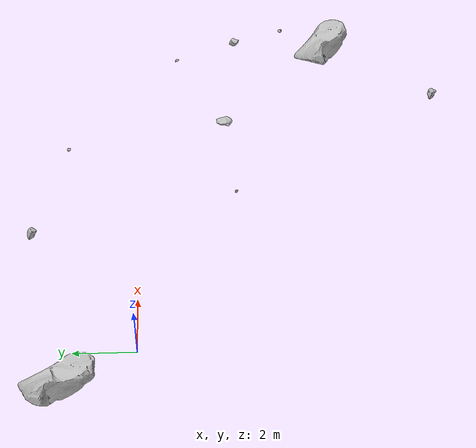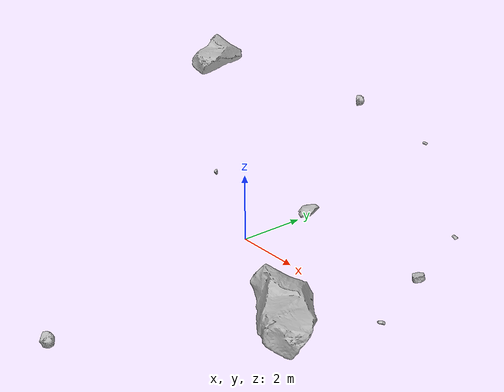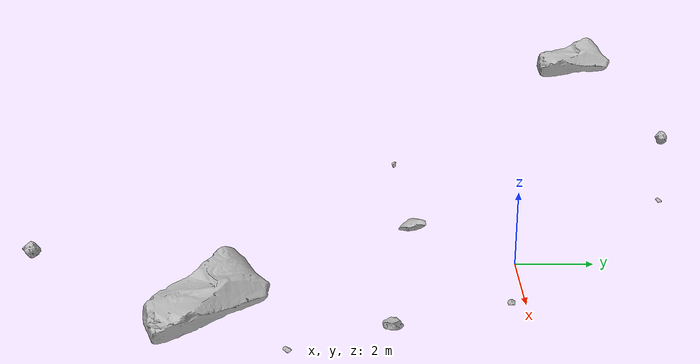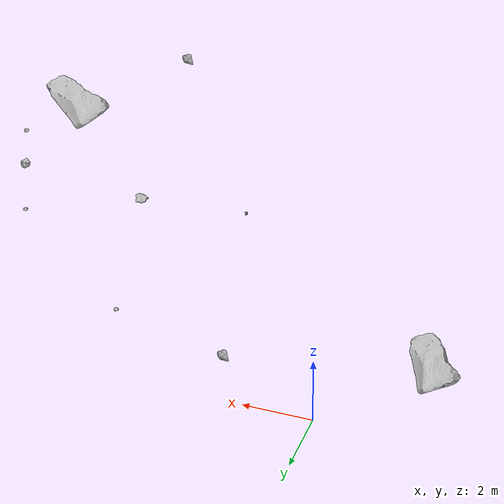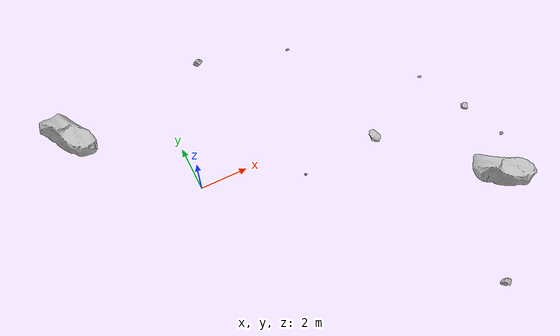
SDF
<sdf version="1.7">
 <world name="marsyard">
  <gravity>0 0 -9.81</gravity>
  <physics name="dart_physics" type="ignored">
   <max_step_size>0.003</max_step_size>
   <real_time_update_rate>333</real_time_update_rate>
   <real_time_factor>1.0</real_time_factor>
  </physics>
  <plugin filename="ignition-gazebo-physics-system" name="ignition::gazebo::systems::Physics"/>
  <plugin filename="ignition-gazebo-user-commands-system" name="ignition::gazebo::systems::UserCommands"/>
  <plugin filename="ignition-gazebo-scene-broadcaster-system" name="ignition::gazebo::systems::SceneBroadcaster"/>
  <plugin filename="ignition-gazebo-contact-system" name="ignition::gazebo::systems::Contact"/>
  <scene>
   <ambient>0.95 0.95 0.95 1</ambient>
   <background>0.70 0.70 0.70 1</background>
   <shadows>false</shadows>
  </scene>
  <light type="directional" name="sun">
   <cast_shadows>false</cast_shadows>
   <pose>0 0 30 0 0 0</pose>
   <diffuse>1 1 1 1</diffuse>
   <specular>0.15 0.15 0.15 1</specular>
   <direction>-0.35 0.1 -0.93</direction>
  </light>
  <model name="Rock_1">
   <static>true</static>
   <pose>5.8794 -2.8735 4.0000 0.0000 0.0000 -1.5677</pose>
   <link name="link">
    <visual name="visual">
     <geometry><mesh><uri>package://rock_generator/rocks_ws/rock_8/meshes/rock_8.stl</uri></mesh></geometry>
    </visual>
    <collision name="collision">
     <geometry><mesh><uri>package://rock_generator/rocks_ws/rock_8/meshes/rock_8.stl</uri></mesh></geometry>
    </collision>
   </link>
  </model>
  <model name="Rock_2">
   <static>true</static>
   <pose>4.8536 1.9495 4.0000 0.0000 0.0000 -2.8421</pose>
   <link name="link">
    <visual name="visual">
     <geometry><mesh><uri>package://rock_generator/rocks_ws/rock_5/meshes/rock_5.stl</uri></mesh></geometry>
    </visual>
    <collision name="collision">
     <geometry><mesh><uri>package://rock_generator/rocks_ws/rock_5/meshes/rock_5.stl</uri></mesh></geometry>
    </collision>
   </link>
  </model>
  <model name="Rock_3">
   <static>true</static>
   <pose>9.4392 -3.2935 4.0000 0.0000 0.0000 -2.9889</pose>
   <link name="link">
    <visual name="visual">
     <geometry><mesh><uri>package://rock_generator/rocks_ws/rock_1/meshes/rock_1.stl</uri></mesh></geometry>
    </visual>
    <collision name="collision">
     <geometry><mesh><uri>package://rock_generator/rocks_ws/rock_1/meshes/rock_1.stl</uri></mesh></geometry>
    </collision>
   </link>
  </model>
  <model name="Rock_4">
   <static>true</static>
   <pose>-3.7907 1.8046 4.0000 0.0000 0.0000 2.2169</pose>
   <link name="link">
    <visual name="visual">
     <geometry><mesh><uri>package://rock_generator/rocks_ws/rock_4/meshes/rock_4.stl</uri></mesh></geometry>
    </visual>
    <collision name="collision">
     <geometry><mesh><uri>package://rock_generator/rocks_ws/rock_4/meshes/rock_4.stl</uri></mesh></geometry>
    </collision>
   </link>
  </model>
  <model name="Rock_5">
   <static>true</static>
   <pose>9.0571 -6.1863 4.0000 0.0000 0.0000 2.6392</pose>
   <link name="link">
    <visual name="visual">
     <geometry><mesh><uri>package://rock_generator/rocks_ws/rock_4/meshes/rock_4.stl</uri></mesh></geometry>
    </visual>
    <collision name="collision">
     <geometry><mesh><uri>package://rock_generator/rocks_ws/rock_4/meshes/rock_4.stl</uri></mesh></geometry>
    </collision>
   </link>
  </model>
  <model name="Rock_6">
   <static>true</static>
   <pose>2.9789 -3.1565 4.0000 0.0000 0.0000 2.0635</pose>
   <link name="link">
    <visual name="visual">
     <geometry><mesh><uri>package://rock_generator/rocks_ws/rock_9/meshes/rock_9.stl</uri></mesh></geometry>
    </visual>
    <collision name="collision">
     <geometry><mesh><uri>package://rock_generator/rocks_ws/rock_9/meshes/rock_9.stl</uri></mesh></geometry>
    </collision>
   </link>
  </model>
  <model name="Rock_7">
   <static>true</static>
   <pose>6.8239 -9.5550 4.0000 0.0000 0.0000 -0.8438</pose>
   <link name="link">
    <visual name="visual">
     <geometry><mesh><uri>package://rock_generator/rocks_ws/rock_3/meshes/rock_3.stl</uri></mesh></geometry>
    </visual>
    <collision name="collision">
     <geometry><mesh><uri>package://rock_generator/rocks_ws/rock_3/meshes/rock_3.stl</uri></mesh></geometry>
    </collision>
   </link>
  </model>
  <model name="Rock_9">
   <static>true</static>
   <pose>8.7004 -1.4024 4.0000 0.0000 0.0000 2.8621</pose>
   <link name="link">
    <visual name="visual">
     <geometry><mesh><uri>package://rock_generator/rocks_ws/rock_5/meshes/rock_5.stl</uri></mesh></geometry>
    </visual>
    <collision name="collision">
     <geometry><mesh><uri>package://rock_generator/rocks_ws/rock_5/meshes/rock_5.stl</uri></mesh></geometry>
    </collision>
   </link>
  </model>
  <model name="Rock_11">
   <static>true</static>
   <pose>1.4658 2.8474 4.0000 0.0000 0.0000 -0.8508</pose>
   <link name="link">
    <visual name="visual">
     <geometry><mesh><uri>package://rock_generator/rocks_ws/rock_3/meshes/rock_3.stl</uri></mesh></geometry>
    </visual>
    <collision name="collision">
     <geometry><mesh><uri>package://rock_generator/rocks_ws/rock_3/meshes/rock_3.stl</uri></mesh></geometry>
    </collision>
   </link>
  </model>
  <model name="Rock_12">
   <static>true</static>
   <pose>9.9909 -4.8192 4.0000 0.0000 0.0000 -2.3419</pose>
   <link name="link">
    <visual name="visual">
     <geometry><mesh><uri>package://rock_generator/rocks_ws/rock_5/meshes/rock_5.stl</uri></mesh></geometry>
    </visual>
    <collision name="collision">
     <geometry><mesh><uri>package://rock_generator/rocks_ws/rock_5/meshes/rock_5.stl</uri></mesh></geometry>
    </collision>
   </link>
  </model>
 </world>
</sdf>
